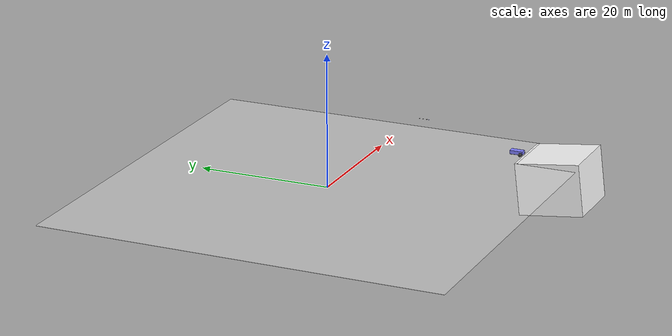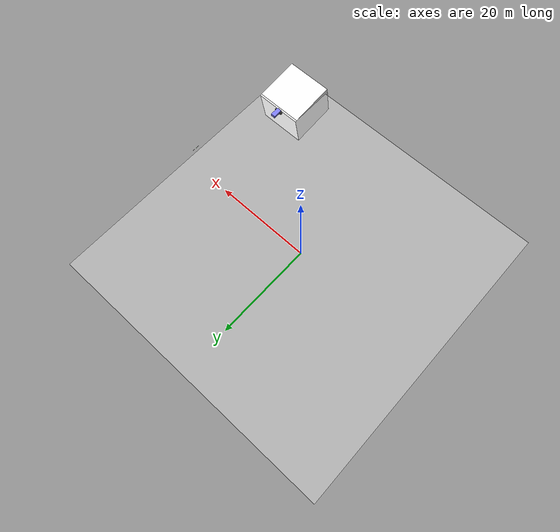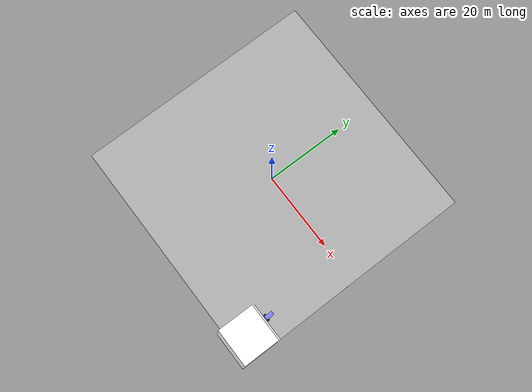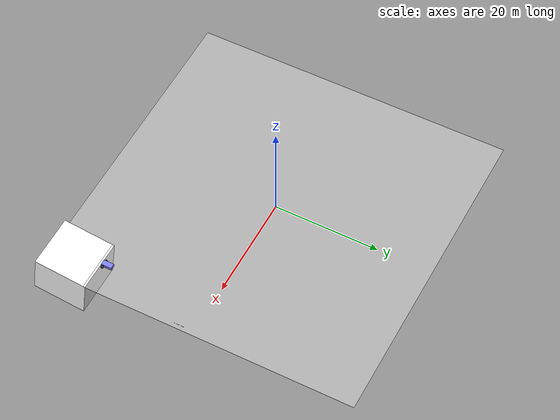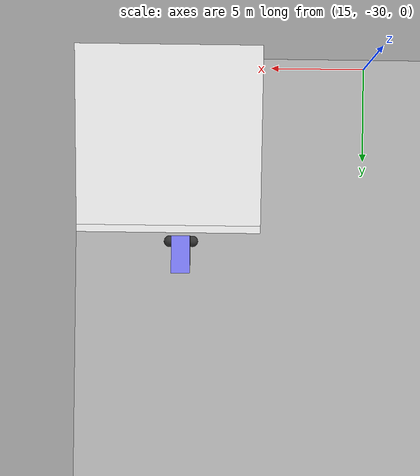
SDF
<sdf version="1.12">
 <world name="default">
  <physics name="fast" type="ignored">
   <max_step_size>0.004</max_step_size>
   <real_time_factor>1</real_time_factor>
  </physics>
  <scene><ambient>0.3 0.3 0.3</ambient><grid>false</grid></scene>
  <light type="spot" name="spot">
   <pose>0 0 10.0 0 0 0</pose>
   <diffuse>1 1 1 1</diffuse>
   <specular>1 1 1 1</specular>
   <intensity>1</intensity>
   <attenuation>
    <range>30</range>
    <linear>0.03</linear>
    <constant>0.02</constant>
    <quadratic>0.0</quadratic>
   </attenuation>
   <direction>0 0 -1</direction>
   <spot><inner_angle>0</inner_angle><outer_angle>2.5</outer_angle><falloff>0.5</falloff></spot>
   <visualize>false</visualize>
  </light>
  <light type="spot" name="spot2">
   <pose>20 20 10.0 0 0 0</pose>
   <diffuse>1 1 1 1</diffuse>
   <specular>1 1 1 1</specular>
   <intensity>1</intensity>
   <attenuation>
    <range>30</range>
    <linear>0.03</linear>
    <constant>0.02</constant>
    <quadratic>0.0</quadratic>
   </attenuation>
   <direction>0 0 -1</direction>
   <spot><inner_angle>0</inner_angle><outer_angle>2.5</outer_angle><falloff>0.5</falloff></spot>
   <cast_shadows>false</cast_shadows>
   <visualize>false</visualize>
  </light>
  <light type="spot" name="spot3">
   <pose>-20 20 10.0 0 0 0</pose>
   <diffuse>1 1 1 1</diffuse>
   <specular>1 1 1 1</specular>
   <intensity>1</intensity>
   <attenuation>
    <range>30</range>
    <linear>0.03</linear>
    <constant>0.02</constant>
    <quadratic>0.0</quadratic>
   </attenuation>
   <direction>0 0 -1</direction>
   <spot><inner_angle>0</inner_angle><outer_angle>2.5</outer_angle><falloff>0.5</falloff></spot>
   <cast_shadows>false</cast_shadows>
   <visualize>false</visualize>
  </light>
  <light type="spot" name="spot4">
   <pose>20 -20 10.0 0 0 0</pose>
   <diffuse>1 1 1 1</diffuse>
   <specular>1 1 1 1</specular>
   <intensity>1</intensity>
   <attenuation>
    <range>30</range>
    <linear>0.03</linear>
    <constant>0.02</constant>
    <quadratic>0.0</quadratic>
   </attenuation>
   <direction>0 0 -1</direction>
   <spot><inner_angle>0</inner_angle><outer_angle>2.5</outer_angle><falloff>0.5</falloff></spot>
   <cast_shadows>false</cast_shadows>
   <visualize>false</visualize>
  </light>
  <light type="spot" name="spot5">
   <pose>-20 -20 10.0 0 0 0</pose>
   <diffuse>1 1 1 1</diffuse>
   <specular>1 1 1 1</specular>
   <intensity>1</intensity>
   <attenuation>
    <range>30</range>
    <linear>0.03</linear>
    <constant>0.02</constant>
    <quadratic>0.0</quadratic>
   </attenuation>
   <direction>0 0 -1</direction>
   <spot><inner_angle>0</inner_angle><outer_angle>2.5</outer_angle><falloff>0.5</falloff></spot>
   <cast_shadows>false</cast_shadows>
   <visualize>false</visualize>
  </light>
  <model name="ground_plane">
   <static>true</static>
   <link name="link">
    <collision name="collision">
     <geometry><plane><normal>0 0 1</normal><size>100 100</size></plane></geometry>
    </collision>
   </link>
  </model>
  <light type="spot" name="drills_spotlight">
   <pose>29 -2.5122 3.0 0 0 0</pose>
   <diffuse>1 1 1 1</diffuse>
   <specular>1 1 1 1</specular>
   <intensity>1</intensity>
   <attenuation>
    <range>5</range>
    <linear>0.03</linear>
    <constant>0.02</constant>
    <quadratic>0.01</quadratic>
   </attenuation>
   <direction>0 0 -1</direction>
   <spot><inner_angle>0.1</inner_angle><outer_angle>2.0</outer_angle><falloff>0.5</falloff></spot>
   <cast_shadows>false</cast_shadows>
   <visualize>false</visualize>
  </light>
  <include>
   <static>true</static>
   <pose>30.46 -2.5122 1.3258 0.0 0.0000 0</pose>
   <name>wall_mount_bracket</name>
   <uri>wall_mount_bracket</uri>
   <plugin filename="gz-sim-detachable-joint-system" name="gz::sim::systems::DetachableJoint">
    <parent_link>link</parent_link>
    <child_model>cordless_drill_default_inertia</child_model>
    <child_link>link</child_link>
    <detach_topic>/drill/detach</detach_topic>
    <attach_topic>/drill/attach</attach_topic>
   </plugin>
   <plugin filename="gz-sim-detachable-joint-system" name="gz::sim::systems::DetachableJoint">
    <parent_link>link</parent_link>
    <child_model>cordless_drill_auto_inertia</child_model>
    <child_link>link</child_link>
    <detach_topic>/drill/detach</detach_topic>
    <attach_topic>/drill/attach</attach_topic>
   </plugin>
   <plugin filename="gz-sim-detachable-joint-system" name="gz::sim::systems::DetachableJoint">
    <parent_link>link</parent_link>
    <child_model>cordless_drill</child_model>
    <child_link>link</child_link>
    <detach_topic>/drill/detach</detach_topic>
    <attach_topic>/drill/attach</attach_topic>
   </plugin>
  </include>
  <include>
   <pose>24.8 -20 0.1323 0 0 -1.57079</pose>
   <name>vehicle_with_wheel_slip</name>
   <uri>vehicle_with_wheel_slip</uri>
  </include>
  <include>
   <static>true</static>
   <pose>25.5 -26.47 -3.37 -0.12 0 0</pose>
   <name>gravel_platform</name>
   <uri>gravel_platform</uri>
  </include>
  <model name="warehouse_slip_map_visualization">
   <static>true</static>
   <link name="link">
    <pose>0 0 0 0.0 0 1.57079</pose>
    <visual name="visual">
     <geometry><box><size>61 61 0.1</size></box></geometry>
     <material>
      <diffuse>1 1 1 0.3</diffuse>
      <pbr><metal><albedo_map>vehicle_with_wheel_slip/warehouse_slip_map.png</albedo_map></metal></pbr>
     </material>
    </visual>
   </link>
  </model>
 </world>
</sdf>

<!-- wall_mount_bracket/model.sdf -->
<sdf version="1.12">
    <model name="wall_mount_bracket">
      <static>true</static>
      <link name="link">
        <collision name="collision">
          <pose>0.0 0.0 0 0 0.0 0</pose>
          <geometry>
            <box>
              <size>0.02 1.727 0.02 0 0 0</size>
            </box>
          </geometry>
        </collision>
        <visual name="base_visual">
          <pose>0.0 0.0 0 0 0.0 0</pose>
          <geometry>
            <box>
              <size>0.02 1.727 0.02 0 0 0</size>
            </box>
          </geometry>
        </visual>
        <visual name="pin1_visual">
          <pose>-0.06 0.0 0 0 1.57079 0</pose>
          <geometry>
            <cylinder>
              <radius>0.01</radius>
              <length>0.12</length>
            </cylinder>
          </geometry>
          <material>
            <diffuse>0.0 1.0 0.0</diffuse>
            <pbr>
              <metal>
                <metalness>0.5</metalness>
                <roughness>0.1</roughness>
              </metal>
            </pbr>
          </material>
        </visual>
        <visual name="pin2_visual">
          <pose>-0.06 -0.8635 0 0 1.57079 0</pose>
          <geometry>
            <cylinder>
              <radius>0.01</radius>
              <length>0.12</length>
            </cylinder>
          </geometry>
          <material>
            <diffuse>0.0 0.0 1.0</diffuse>
            <pbr>
              <metal>
                <metalness>0.5</metalness>
                <roughness>0.1</roughness>
              </metal>
            </pbr>
          </material>

        </visual>
        <visual name="pin3_visual">
          <pose>-0.06 0.8635 0 0 1.57079 0</pose>
          <geometry>
            <cylinder>
              <radius>0.01</radius>
              <length>0.12</length>
            </cylinder>
          </geometry>
          <material>
            <diffuse>1.0 0.0 0.0</diffuse>
            <pbr>
              <metal>
                <metalness>0.5</metalness>
                <roughness>0.1</roughness>
              </metal>
            </pbr>
          </material>
        </visual>
      </link>
    </model>
</sdf>

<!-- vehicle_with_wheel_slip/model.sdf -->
<sdf version="1.12">
  <model name='vehicle_blue'>
    <link name='chassis'>
      <pose>-0.151427 -0 0.175 0 -0 0</pose>
      <inertial>
        <mass>1.14395</mass>
        <inertia>
          <ixx>0.126164</ixx>
          <ixy>0</ixy>
          <ixz>0</ixz>
          <iyy>0.416519</iyy>
          <iyz>0</iyz>
          <izz>0.481014</izz>
        </inertia>
      </inertial>
      <visual name='visual'>
        <geometry>
          <box>
            <size>2.01142 1 0.568726</size>
          </box>
        </geometry>
        <material>
          <ambient>0.5 0.5 1.0 1</ambient>
          <diffuse>0.5 0.5 1.0 1</diffuse>
          <specular>0.0 0.0 1.0 1</specular>
        </material>
      </visual>
      <collision name='collision'>
        <geometry>
          <box>
            <size>2.01142 1 0.568726</size>
          </box>
        </geometry>
      </collision>
    </link>

    <link name='left_wheel'>
      <pose>0.554283 0.625029 -0.025 -1.5707 0 0</pose>
      <inertial>
        <mass>2</mass>
        <inertia>
          <ixx>0.145833</ixx>
          <ixy>0</ixy>
          <ixz>0</ixz>
          <iyy>0.145833</iyy>
          <iyz>0</iyz>
          <izz>0.125</izz>
        </inertia>
      </inertial>
      <visual name='visual'>
        <geometry>
          <sphere>
            <radius>0.3</radius>
          </sphere>
        </geometry>
        <material>
          <ambient>0.2 0.2 0.2 1</ambient>
          <diffuse>0.2 0.2 0.2 1</diffuse>
          <specular>0.2 0.2 0.2 1</specular>
        </material>
      </visual>
      <collision name='collision'>
        <geometry>
          <sphere>
            <radius>0.3</radius>
          </sphere>
        </geometry>
        <surface>
          <friction>
            <ode>
              <mu>1</mu>
              <mu2>1</mu2>
              <slip1>0.035</slip1>
              <slip2>0</slip2>
              <fdir1>0 0 1</fdir1>
            </ode>
            <bullet>
              <friction>1</friction>
              <friction2>1</friction2>
              <rolling_friction>0.1</rolling_friction>
            </bullet>
          </friction>
        </surface>
      </collision>
    </link>

    <link name='right_wheel'>
      <pose>0.554282 -0.625029 -0.025 -1.5707 0 0</pose>
      <inertial>
        <mass>2</mass>
        <inertia>
          <ixx>0.145833</ixx>
          <ixy>0</ixy>
          <ixz>0</ixz>
          <iyy>0.145833</iyy>
          <iyz>0</iyz>
          <izz>0.125</izz>
        </inertia>
      </inertial>
      <visual name='visual'>
        <geometry>
          <sphere>
            <radius>0.3</radius>
          </sphere>
        </geometry>
        <material>
          <ambient>0.2 0.2 0.2 1</ambient>
          <diffuse>0.2 0.2 0.2 1</diffuse>
          <specular>0.2 0.2 0.2 1</specular>
        </material>
      </visual>
      <collision name='collision'>
        <geometry>
          <sphere>
            <radius>0.3</radius>
          </sphere>
        </geometry>
        <surface>
          <friction>
            <ode>
              <mu>1</mu>
              <mu2>1</mu2>
              <slip1>0.035</slip1>
              <slip2>0</slip2>
              <fdir1>0 0 1</fdir1>
            </ode>
            <bullet>
              <friction>1</friction>
              <friction2>1</friction2>
              <rolling_friction>0.1</rolling_friction>
            </bullet>
          </friction>
        </surface>
      </collision>
    </link>

    <link name='caster'>
      <pose>-0.957138 -0 -0.125 0 -0 0</pose>
      <inertial>
        <mass>1</mass>
        <inertia>
          <ixx>0.1</ixx>
          <ixy>0</ixy>
          <ixz>0</ixz>
          <iyy>0.1</iyy>
          <iyz>0</iyz>
          <izz>0.1</izz>
        </inertia>
      </inertial>
      <visual name='visual'>
        <geometry>
          <sphere>
            <radius>0.2</radius>
          </sphere>
        </geometry>
        <material>
          <ambient>0.2 0.2 0.2 1</ambient>
          <diffuse>0.2 0.2 0.2 1</diffuse>
          <specular>0.2 0.2 0.2 1</specular>
        </material>
      </visual>
      <collision name='collision'>
        <geometry>
          <sphere>
            <radius>0.2</radius>
          </sphere>
        </geometry>
      </collision>
    </link>

    <joint name='left_wheel_joint' type='revolute'>
      <parent>chassis</parent>
      <child>left_wheel</child>
      <axis>
        <xyz>0 0 1</xyz>
        <limit>
          <lower>-1.79769e+308</lower>
          <upper>1.79769e+308</upper>
        </limit>
      </axis>
    </joint>

    <joint name='right_wheel_joint' type='revolute'>
      <parent>chassis</parent>
      <child>right_wheel</child>
      <axis>
        <xyz>0 0 1</xyz>
        <limit>
          <lower>-1.79769e+308</lower>
          <upper>1.79769e+308</upper>
        </limit>
      </axis>
    </joint>

    <joint name='caster_wheel' type='ball'>
      <parent>chassis</parent>
      <child>caster</child>
    </joint>

    <plugin
      filename="gz-sim-diff-drive-system"
      name="gz::sim::systems::DiffDrive">
      <left_joint>left_wheel_joint</left_joint>
      <right_joint>right_wheel_joint</right_joint>
      <wheel_separation>1.25</wheel_separation>
      <wheel_radius>0.3</wheel_radius>
      <odom_publish_frequency>1</odom_publish_frequency>
      <max_linear_acceleration>1</max_linear_acceleration>
      <min_linear_acceleration>-1</min_linear_acceleration>
      <max_angular_acceleration>2</max_angular_acceleration>
      <min_angular_acceleration>-2</min_angular_acceleration>
      <max_linear_velocity>0.5</max_linear_velocity>
      <min_linear_velocity>-0.5</min_linear_velocity>
      <max_angular_velocity>1</max_angular_velocity>
      <min_angular_velocity>-1</min_angular_velocity>
    </plugin>

    <plugin
      filename="gz-sim-wheel-slip-system"
      name="gz::sim::systems::WheelSlip">
      <wheel link_name="right_wheel">
        <slip_compliance_lateral>0.0</slip_compliance_lateral>
        <slip_compliance_longitudinal>0.0</slip_compliance_longitudinal>
        <wheel_normal_force>1</wheel_normal_force>
        <wheel_radius>0.3</wheel_radius>
      </wheel>
      <wheel link_name="left_wheel">
        <slip_compliance_lateral>0.0</slip_compliance_lateral>
        <slip_compliance_longitudinal>0.0</slip_compliance_longitudinal>
        <wheel_normal_force>1</wheel_normal_force>
        <wheel_radius>0.3</wheel_radius>
      </wheel>
    </plugin>
    <plugin
      filename="gz-sim-lookup-wheel-slip-system"
      name="gz::sim::systems::LookupWheelSlip">
      <slip_map>warehouse_slip_map.png</slip_map>
      <size_x>61</size_x>
      <size_y>61</size_y>
      <slip_compliance_lateral_delta>0.05</slip_compliance_lateral_delta>
      <slip_compliance_longitudinal_delta>0.001</slip_compliance_longitudinal_delta>
      <friction_delta>0.5</friction_delta>
      <wheel_link_name>left_wheel</wheel_link_name>
      <wheel_link_name>right_wheel</wheel_link_name>
    </plugin>
  </model>
</sdf>

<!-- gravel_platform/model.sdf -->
<sdf version="1.6">
  <model name="gravel_platform">
    <link name="link">
      <pose>0 0 0 0.0 0 0</pose>
      <collision name="collision">
        <geometry>
          <box>
             <size>10 10 8</size>
          </box>
        </geometry>
      </collision>
      <visual name="visual">
        <geometry>
          <box>
             <size>10 10 8</size>
          </box>
        </geometry>
        <material>
          <diffuse>1 1 1</diffuse>
          <pbr><metal>
          <albedo_map>materials/textures/gravel_diffuse.png</albedo_map>
          <normal_map>materials/textures/gravel_normal.png</normal_map>
          </metal></pbr>
        </material>
      </visual>
    </link>
  </model>
</sdf>
